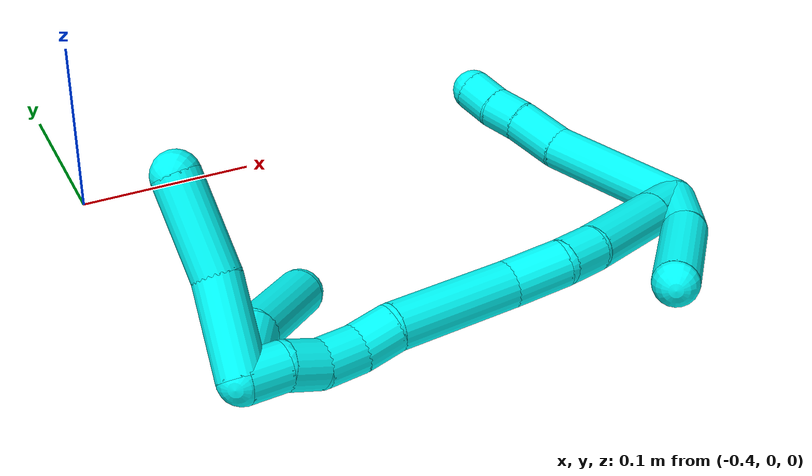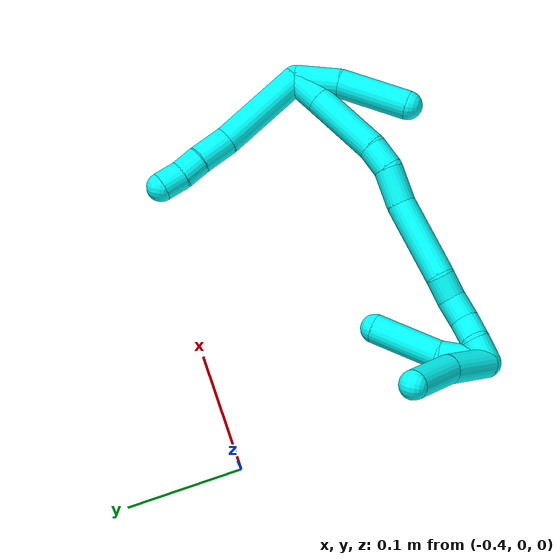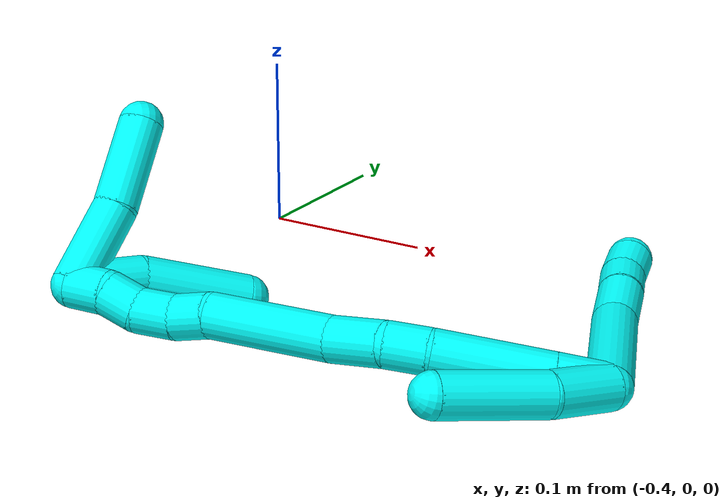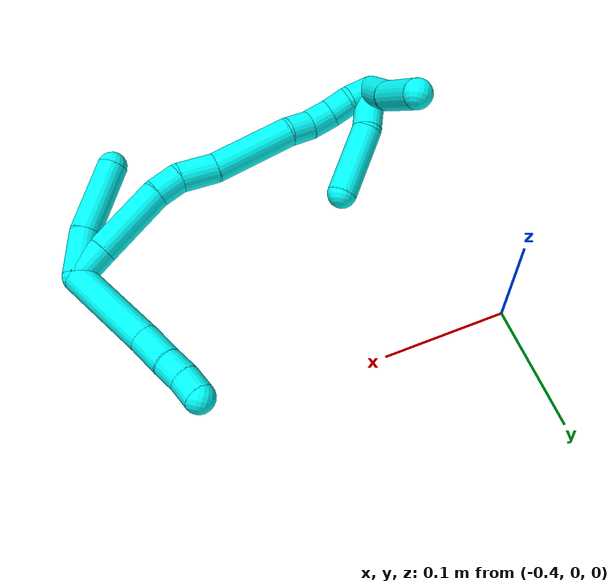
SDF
<sdf version="1.7">
 <world name="default">
  <model name="3">
   <static>0</static>
   <link name="3">
    <collision name="collision-cylinder-e_1_2_8">
     <pose>-0.032297 -0.012461 -0.019631 2.57599 -0.946817 -2.10958</pose>
     <geometry><cylinder><radius>0.0125</radius><length>0.079592</length></cylinder></geometry>
     <surface>
      <friction><ode><mu>1.16</mu><mu2>1.16</mu2><slip1>0</slip1><slip2>0</slip2></ode></friction>
      <contact><ode><kp>1e+06</kp><kd>1</kd><max_vel>0</max_vel><min_depth>0.001</min_depth></ode></contact>
     </surface>
    </collision>
    <visual name="visual-cylinder-e_1_2_8">
     <pose>-0.032297 -0.012461 -0.019631 2.57599 -0.946817 -2.10958</pose>
     <geometry><cylinder><radius>0.0125</radius><length>0.079592</length></cylinder></geometry>
     <material><ambient>0.003922 1 0.996078 1</ambient></material>
    </visual>
    <collision name="collision-cylinder-e_2_8_9">
     <pose>-0.077293 -0.02711 -0.046813 2.85963 -1.01642 -2.64263</pose>
     <geometry><cylinder><radius>0.0125</radius><length>0.029872</length></cylinder></geometry>
     <surface>
      <friction><ode><mu>1.16</mu><mu2>1.16</mu2><slip1>0</slip1><slip2>0</slip2></ode></friction>
      <contact><ode><kp>1e+06</kp><kd>1</kd><max_vel>0</max_vel><min_depth>0.001</min_depth></ode></contact>
     </surface>
    </collision>
    <visual name="visual-cylinder-e_2_8_9">
     <pose>-0.077293 -0.02711 -0.046813 2.85963 -1.01642 -2.64263</pose>
     <geometry><cylinder><radius>0.0125</radius><length>0.029872</length></cylinder></geometry>
     <material><ambient>0.003922 1 0.996078 1</ambient></material>
    </visual>
    <collision name="collision-cylinder-e_3_9_10">
     <pose>-0.098424 -0.03179 -0.059346 2.67764 -0.987012 -2.31397</pose>
     <geometry><cylinder><radius>0.0125</radius><length>0.02021</length></cylinder></geometry>
     <surface>
      <friction><ode><mu>1.16</mu><mu2>1.16</mu2><slip1>0</slip1><slip2>0</slip2></ode></friction>
      <contact><ode><kp>1e+06</kp><kd>1</kd><max_vel>0</max_vel><min_depth>0.001</min_depth></ode></contact>
     </surface>
    </collision>
    <visual name="visual-cylinder-e_3_9_10">
     <pose>-0.098424 -0.03179 -0.059346 2.67764 -0.987012 -2.31397</pose>
     <geometry><cylinder><radius>0.0125</radius><length>0.02021</length></cylinder></geometry>
     <material><ambient>0.003922 1 0.996078 1</ambient></material>
    </visual>
    <collision name="collision-cylinder-e_4_10_6">
     <pose>-0.115072 -0.03548 -0.070186 2.93993 -0.941725 -2.74921</pose>
     <geometry><cylinder><radius>0.0125</radius><length>0.020325</length></cylinder></geometry>
     <surface>
      <friction><ode><mu>1.16</mu><mu2>1.16</mu2><slip1>0</slip1><slip2>0</slip2></ode></friction>
      <contact><ode><kp>1e+06</kp><kd>1</kd><max_vel>0</max_vel><min_depth>0.001</min_depth></ode></contact>
     </surface>
    </collision>
    <visual name="visual-cylinder-e_4_10_6">
     <pose>-0.115072 -0.03548 -0.070186 2.93993 -0.941725 -2.74921</pose>
     <geometry><cylinder><radius>0.0125</radius><length>0.020325</length></cylinder></geometry>
     <material><ambient>0.003922 1 0.996078 1</ambient></material>
    </visual>
    <collision name="collision-cylinder-e_1_2_11">
     <pose>0.003868 -0.000447 0.01876 0.023841 0.203255 0.002431</pose>
     <geometry><cylinder><radius>0.0125</radius><length>0.03832</length></cylinder></geometry>
     <surface>
      <friction><ode><mu>1.16</mu><mu2>1.16</mu2><slip1>0</slip1><slip2>0</slip2></ode></friction>
      <contact><ode><kp>1e+06</kp><kd>1</kd><max_vel>0</max_vel><min_depth>0.001</min_depth></ode></contact>
     </surface>
    </collision>
    <visual name="visual-cylinder-e_1_2_11">
     <pose>0.003868 -0.000447 0.01876 0.023841 0.203255 0.002431</pose>
     <geometry><cylinder><radius>0.0125</radius><length>0.03832</length></cylinder></geometry>
     <material><ambient>0.003922 1 0.996078 1</ambient></material>
    </visual>
    <collision name="collision-cylinder-e_2_11_5">
     <pose>0.007778 -0.005135 0.068068 0.137926 0.001372 9.5e-05</pose>
     <geometry><cylinder><radius>0.0125</radius><length>0.06168</length></cylinder></geometry>
     <surface>
      <friction><ode><mu>1.16</mu><mu2>1.16</mu2><slip1>0</slip1><slip2>0</slip2></ode></friction>
      <contact><ode><kp>1e+06</kp><kd>1</kd><max_vel>0</max_vel><min_depth>0.001</min_depth></ode></contact>
     </surface>
    </collision>
    <visual name="visual-cylinder-e_2_11_5">
     <pose>0.007778 -0.005135 0.068068 0.137926 0.001372 9.5e-05</pose>
     <geometry><cylinder><radius>0.0125</radius><length>0.06168</length></cylinder></geometry>
     <material><ambient>0.003922 1 0.996078 1</ambient></material>
    </visual>
    <collision name="collision-cylinder-e_1_2_12">
     <pose>-0.005149 -0.004053 0.012666 0.309701 -0.369424 -0.058316</pose>
     <geometry><cylinder><radius>0.0125</radius><length>0.028522</length></cylinder></geometry>
     <surface>
      <friction><ode><mu>1.16</mu><mu2>1.16</mu2><slip1>0</slip1><slip2>0</slip2></ode></friction>
      <contact><ode><kp>1e+06</kp><kd>1</kd><max_vel>0</max_vel><min_depth>0.001</min_depth></ode></contact>
     </surface>
    </collision>
    <visual name="visual-cylinder-e_1_2_12">
     <pose>-0.005149 -0.004053 0.012666 0.309701 -0.369424 -0.058316</pose>
     <geometry><cylinder><radius>0.0125</radius><length>0.028522</length></cylinder></geometry>
     <material><ambient>0.003922 1 0.996078 1</ambient></material>
    </visual>
    <collision name="collision-cylinder-e_2_12_13">
     <pose>-0.021747 -0.017306 0.053083 0.320101 -0.373237 -0.060943</pose>
     <geometry><cylinder><radius>0.0125</radius><length>0.062793</length></cylinder></geometry>
     <surface>
      <friction><ode><mu>1.16</mu><mu2>1.16</mu2><slip1>0</slip1><slip2>0</slip2></ode></friction>
      <contact><ode><kp>1e+06</kp><kd>1</kd><max_vel>0</max_vel><min_depth>0.001</min_depth></ode></contact>
     </surface>
    </collision>
    <visual name="visual-cylinder-e_2_12_13">
     <pose>-0.021747 -0.017306 0.053083 0.320101 -0.373237 -0.060943</pose>
     <geometry><cylinder><radius>0.0125</radius><length>0.062793</length></cylinder></geometry>
     <material><ambient>0.003922 1 0.996078 1</ambient></material>
    </visual>
    <collision name="collision-cylinder-e_3_13_14">
     <pose>-0.038397 -0.031535 0.089744 0.513861 -0.470271 -0.125721</pose>
     <geometry><cylinder><radius>0.0125</radius><length>0.022959</length></cylinder></geometry>
     <surface>
      <friction><ode><mu>1.16</mu><mu2>1.16</mu2><slip1>0</slip1><slip2>0</slip2></ode></friction>
      <contact><ode><kp>1e+06</kp><kd>1</kd><max_vel>0</max_vel><min_depth>0.001</min_depth></ode></contact>
     </surface>
    </collision>
    <visual name="visual-cylinder-e_3_13_14">
     <pose>-0.038397 -0.031535 0.089744 0.513861 -0.470271 -0.125721</pose>
     <geometry><cylinder><radius>0.0125</radius><length>0.022959</length></cylinder></geometry>
     <material><ambient>0.003922 1 0.996078 1</ambient></material>
    </visual>
    <collision name="collision-cylinder-e_4_14_15">
     <pose>-0.052198 -0.046888 0.107199 0.879476 -0.570597 -0.27424</pose>
     <geometry><cylinder><radius>0.0125</radius><length>0.031843</length></cylinder></geometry>
     <surface>
      <friction><ode><mu>1.16</mu><mu2>1.16</mu2><slip1>0</slip1><slip2>0</slip2></ode></friction>
      <contact><ode><kp>1e+06</kp><kd>1</kd><max_vel>0</max_vel><min_depth>0.001</min_depth></ode></contact>
     </surface>
    </collision>
    <visual name="visual-cylinder-e_4_14_15">
     <pose>-0.052198 -0.046888 0.107199 0.879476 -0.570597 -0.27424</pose>
     <geometry><cylinder><radius>0.0125</radius><length>0.031843</length></cylinder></geometry>
     <material><ambient>0.003922 1 0.996078 1</ambient></material>
    </visual>
    <collision name="collision-cylinder-e_5_15_16">
     <pose>-0.079479 -0.074834 0.139154 0.645272 -0.567522 -0.19438</pose>
     <geometry><cylinder><radius>0.0125</radius><length>0.069504</length></cylinder></geometry>
     <surface>
      <friction><ode><mu>1.16</mu><mu2>1.16</mu2><slip1>0</slip1><slip2>0</slip2></ode></friction>
      <contact><ode><kp>1e+06</kp><kd>1</kd><max_vel>0</max_vel><min_depth>0.001</min_depth></ode></contact>
     </surface>
    </collision>
    <visual name="visual-cylinder-e_5_15_16">
     <pose>-0.079479 -0.074834 0.139154 0.645272 -0.567522 -0.19438</pose>
     <geometry><cylinder><radius>0.0125</radius><length>0.069504</length></cylinder></geometry>
     <material><ambient>0.003922 1 0.996078 1</ambient></material>
    </visual>
    <collision name="collision-cylinder-e_6_16_17">
     <pose>-0.102413 -0.099739 0.168778 0.864371 -0.418214 -0.195149</pose>
     <geometry><cylinder><radius>0.0125</radius><length>0.020948</length></cylinder></geometry>
     <surface>
      <friction><ode><mu>1.16</mu><mu2>1.16</mu2><slip1>0</slip1><slip2>0</slip2></ode></friction>
      <contact><ode><kp>1e+06</kp><kd>1</kd><max_vel>0</max_vel><min_depth>0.001</min_depth></ode></contact>
     </surface>
    </collision>
    <visual name="visual-cylinder-e_6_16_17">
     <pose>-0.102413 -0.099739 0.168778 0.864371 -0.418214 -0.195149</pose>
     <geometry><cylinder><radius>0.0125</radius><length>0.020948</length></cylinder></geometry>
     <material><ambient>0.003922 1 0.996078 1</ambient></material>
    </visual>
    <collision name="collision-cylinder-e_7_17_18">
     <pose>-0.112269 -0.112412 0.182784 0.605295 -0.533917 -0.170373</pose>
     <geometry><cylinder><radius>0.0125</radius><length>0.022017</length></cylinder></geometry>
     <surface>
      <friction><ode><mu>1.16</mu><mu2>1.16</mu2><slip1>0</slip1><slip2>0</slip2></ode></friction>
      <contact><ode><kp>1e+06</kp><kd>1</kd><max_vel>0</max_vel><min_depth>0.001</min_depth></ode></contact>
     </surface>
    </collision>
    <visual name="visual-cylinder-e_7_17_18">
     <pose>-0.112269 -0.112412 0.182784 0.605295 -0.533917 -0.170373</pose>
     <geometry><cylinder><radius>0.0125</radius><length>0.022017</length></cylinder></geometry>
     <material><ambient>0.003922 1 0.996078 1</ambient></material>
    </visual>
    <collision name="collision-cylinder-e_8_18_19">
     <pose>-0.124815 -0.120089 0.197453 0.32081 -0.764048 -0.129823</pose>
     <geometry><cylinder><radius>0.0125</radius><length>0.020072</length></cylinder></geometry>
     <surface>
      <friction><ode><mu>1.16</mu><mu2>1.16</mu2><slip1>0</slip1><slip2>0</slip2></ode></friction>
      <contact><ode><kp>1e+06</kp><kd>1</kd><max_vel>0</max_vel><min_depth>0.001</min_depth></ode></contact>
     </surface>
    </collision>
    <visual name="visual-cylinder-e_8_18_19">
     <pose>-0.124815 -0.120089 0.197453 0.32081 -0.764048 -0.129823</pose>
     <geometry><cylinder><radius>0.0125</radius><length>0.020072</length></cylinder></geometry>
     <material><ambient>0.003922 1 0.996078 1</ambient></material>
    </visual>
    <collision name="collision-cylinder-e_9_19_1">
     <pose>-0.137777 -0.127808 0.211267 0.664533 -0.599249 -0.212393</pose>
     <geometry><cylinder><radius>0.0125</radius><length>0.021342</length></cylinder></geometry>
     <surface>
      <friction><ode><mu>1.16</mu><mu2>1.16</mu2><slip1>0</slip1><slip2>0</slip2></ode></friction>
      <contact><ode><kp>1e+06</kp><kd>1</kd><max_vel>0</max_vel><min_depth>0.001</min_depth></ode></contact>
     </surface>
    </collision>
    <visual name="visual-cylinder-e_9_19_1">
     <pose>-0.137777 -0.127808 0.211267 0.664533 -0.599249 -0.212393</pose>
     <geometry><cylinder><radius>0.0125</radius><length>0.021342</length></cylinder></geometry>
     <material><ambient>0.003922 1 0.996078 1</ambient></material>
    </visual>
    <collision name="collision-cylinder-e_1_1_20">
     <pose>-0.147431 -0.131489 0.198741 -3.05178 -0.183923 2.23479</pose>
     <geometry><cylinder><radius>0.0125</radius><length>0.039752</length></cylinder></geometry>
     <surface>
      <friction><ode><mu>1.16</mu><mu2>1.16</mu2><slip1>0</slip1><slip2>0</slip2></ode></friction>
      <contact><ode><kp>1e+06</kp><kd>1</kd><max_vel>0</max_vel><min_depth>0.001</min_depth></ode></contact>
     </surface>
    </collision>
    <visual name="visual-cylinder-e_1_1_20">
     <pose>-0.147431 -0.131489 0.198741 -3.05178 -0.183923 2.23479</pose>
     <geometry><cylinder><radius>0.0125</radius><length>0.039752</length></cylinder></geometry>
     <material><ambient>0.003922 1 0.996078 1</ambient></material>
    </visual>
    <collision name="collision-cylinder-e_2_20_4">
     <pose>-0.146847 -0.128026 0.149501 -3.08419 0.140505 -2.36681</pose>
     <geometry><cylinder><radius>0.0125</radius><length>0.060248</length></cylinder></geometry>
     <surface>
      <friction><ode><mu>1.16</mu><mu2>1.16</mu2><slip1>0</slip1><slip2>0</slip2></ode></friction>
      <contact><ode><kp>1e+06</kp><kd>1</kd><max_vel>0</max_vel><min_depth>0.001</min_depth></ode></contact>
     </surface>
    </collision>
    <visual name="visual-cylinder-e_2_20_4">
     <pose>-0.146847 -0.128026 0.149501 -3.08419 0.140505 -2.36681</pose>
     <geometry><cylinder><radius>0.0125</radius><length>0.060248</length></cylinder></geometry>
     <material><ambient>0.003922 1 0.996078 1</ambient></material>
    </visual>
    <collision name="collision-cylinder-e_1_1_21">
     <pose>-0.162201 -0.120869 0.208029 -2.25896 -0.854605 1.53409</pose>
     <geometry><cylinder><radius>0.0125</radius><length>0.0488</length></cylinder></geometry>
     <surface>
      <friction><ode><mu>1.16</mu><mu2>1.16</mu2><slip1>0</slip1><slip2>0</slip2></ode></friction>
      <contact><ode><kp>1e+06</kp><kd>1</kd><max_vel>0</max_vel><min_depth>0.001</min_depth></ode></contact>
     </surface>
    </collision>
    <visual name="visual-cylinder-e_1_1_21">
     <pose>-0.162201 -0.120869 0.208029 -2.25896 -0.854605 1.53409</pose>
     <geometry><cylinder><radius>0.0125</radius><length>0.0488</length></cylinder></geometry>
     <material><ambient>0.003922 1 0.996078 1</ambient></material>
    </visual>
    <collision name="collision-cylinder-e_2_21_3">
     <pose>-0.20229 -0.096636 0.191181 -2.08337 -1.01035 1.51512</pose>
     <geometry><cylinder><radius>0.0125</radius><length>0.0512</length></cylinder></geometry>
     <surface>
      <friction><ode><mu>1.16</mu><mu2>1.16</mu2><slip1>0</slip1><slip2>0</slip2></ode></friction>
      <contact><ode><kp>1e+06</kp><kd>1</kd><max_vel>0</max_vel><min_depth>0.001</min_depth></ode></contact>
     </surface>
    </collision>
    <visual name="visual-cylinder-e_2_21_3">
     <pose>-0.20229 -0.096636 0.191181 -2.08337 -1.01035 1.51512</pose>
     <geometry><cylinder><radius>0.0125</radius><length>0.0512</length></cylinder></geometry>
     <material><ambient>0.003922 1 0.996078 1</ambient></material>
    </visual>
    <collision name="collision-sphere-3">
     <pose>-0.223973 -0.084777 0.184508 0 -0 0</pose>
     <geometry><sphere><radius>0.0125</radius></sphere></geometry>
     <surface>
      <friction><ode><mu>1.16</mu><mu2>1.16</mu2><slip1>0</slip1><slip2>0</slip2></ode></friction>
      <contact><ode><kp>1e+06</kp><kd>1</kd><max_vel>0</max_vel><min_depth>0.001</min_depth></ode></contact>
     </surface>
    </collision>
    <visual name="visual-sphere-3">
     <pose>-0.223973 -0.084777 0.184508 0 -0 0</pose>
     <geometry><sphere><radius>0.0125</radius></sphere></geometry>
     <material><ambient>0.003922 1 0.996078 1</ambient></material>
    </visual>
    <collision name="collision-sphere-21">
     <pose>-0.180606 -0.108495 0.197855 0 -0 0</pose>
     <geometry><sphere><radius>0.0125</radius></sphere></geometry>
     <surface>
      <friction><ode><mu>1.16</mu><mu2>1.16</mu2><slip1>0</slip1><slip2>0</slip2></ode></friction>
      <contact><ode><kp>1e+06</kp><kd>1</kd><max_vel>0</max_vel><min_depth>0.001</min_depth></ode></contact>
     </surface>
    </collision>
    <visual name="visual-sphere-21">
     <pose>-0.180606 -0.108495 0.197855 0 -0 0</pose>
     <geometry><sphere><radius>0.0125</radius></sphere></geometry>
     <material><ambient>0.003922 1 0.996078 1</ambient></material>
    </visual>
    <collision name="collision-sphere-4">
     <pose>-0.142629 -0.126314 0.119723 0 -0 0</pose>
     <geometry><sphere><radius>0.0125</radius></sphere></geometry>
     <surface>
      <friction><ode><mu>1.16</mu><mu2>1.16</mu2><slip1>0</slip1><slip2>0</slip2></ode></friction>
      <contact><ode><kp>1e+06</kp><kd>1</kd><max_vel>0</max_vel><min_depth>0.001</min_depth></ode></contact>
     </surface>
    </collision>
    <visual name="visual-sphere-4">
     <pose>-0.142629 -0.126314 0.119723 0 -0 0</pose>
     <geometry><sphere><radius>0.0125</radius></sphere></geometry>
     <material><ambient>0.003922 1 0.996078 1</ambient></material>
    </visual>
    <collision name="collision-sphere-20">
     <pose>-0.151066 -0.129737 0.179279 0 -0 0</pose>
     <geometry><sphere><radius>0.0125</radius></sphere></geometry>
     <surface>
      <friction><ode><mu>1.16</mu><mu2>1.16</mu2><slip1>0</slip1><slip2>0</slip2></ode></friction>
      <contact><ode><kp>1e+06</kp><kd>1</kd><max_vel>0</max_vel><min_depth>0.001</min_depth></ode></contact>
     </surface>
    </collision>
    <visual name="visual-sphere-20">
     <pose>-0.151066 -0.129737 0.179279 0 -0 0</pose>
     <geometry><sphere><radius>0.0125</radius></sphere></geometry>
     <material><ambient>0.003922 1 0.996078 1</ambient></material>
    </visual>
    <collision name="collision-sphere-11">
     <pose>0.007735 -0.000895 0.037521 0 -0 0</pose>
     <geometry><sphere><radius>0.0125</radius></sphere></geometry>
     <surface>
      <friction><ode><mu>1.16</mu><mu2>1.16</mu2><slip1>0</slip1><slip2>0</slip2></ode></friction>
      <contact><ode><kp>1e+06</kp><kd>1</kd><max_vel>0</max_vel><min_depth>0.001</min_depth></ode></contact>
     </surface>
    </collision>
    <visual name="visual-sphere-11">
     <pose>0.007735 -0.000895 0.037521 0 -0 0</pose>
     <geometry><sphere><radius>0.0125</radius></sphere></geometry>
     <material><ambient>0.003922 1 0.996078 1</ambient></material>
    </visual>
    <collision name="collision-sphere-6">
     <pose>-0.12329 -0.036678 -0.076044 0 -0 0</pose>
     <geometry><sphere><radius>0.0125</radius></sphere></geometry>
     <surface>
      <friction><ode><mu>1.16</mu><mu2>1.16</mu2><slip1>0</slip1><slip2>0</slip2></ode></friction>
      <contact><ode><kp>1e+06</kp><kd>1</kd><max_vel>0</max_vel><min_depth>0.001</min_depth></ode></contact>
     </surface>
    </collision>
    <visual name="visual-sphere-6">
     <pose>-0.12329 -0.036678 -0.076044 0 -0 0</pose>
     <geometry><sphere><radius>0.0125</radius></sphere></geometry>
     <material><ambient>0.003922 1 0.996078 1</ambient></material>
    </visual>
    <collision name="collision-sphere-10">
     <pose>-0.106855 -0.034283 -0.064327 0 -0 0</pose>
     <geometry><sphere><radius>0.0125</radius></sphere></geometry>
     <surface>
      <friction><ode><mu>1.16</mu><mu2>1.16</mu2><slip1>0</slip1><slip2>0</slip2></ode></friction>
      <contact><ode><kp>1e+06</kp><kd>1</kd><max_vel>0</max_vel><min_depth>0.001</min_depth></ode></contact>
     </surface>
    </collision>
    <visual name="visual-sphere-10">
     <pose>-0.106855 -0.034283 -0.064327 0 -0 0</pose>
     <geometry><sphere><radius>0.0125</radius></sphere></geometry>
     <material><ambient>0.003922 1 0.996078 1</ambient></material>
    </visual>
    <collision name="collision-sphere-9">
     <pose>-0.089992 -0.029298 -0.054365 0 -0 0</pose>
     <geometry><sphere><radius>0.0125</radius></sphere></geometry>
     <surface>
      <friction><ode><mu>1.16</mu><mu2>1.16</mu2><slip1>0</slip1><slip2>0</slip2></ode></friction>
      <contact><ode><kp>1e+06</kp><kd>1</kd><max_vel>0</max_vel><min_depth>0.001</min_depth></ode></contact>
     </surface>
    </collision>
    <visual name="visual-sphere-9">
     <pose>-0.089992 -0.029298 -0.054365 0 -0 0</pose>
     <geometry><sphere><radius>0.0125</radius></sphere></geometry>
     <material><ambient>0.003922 1 0.996078 1</ambient></material>
    </visual>
    <collision name="collision-sphere-2">
     <geometry><sphere><radius>0.0125</radius></sphere></geometry>
     <surface>
      <friction><ode><mu>1.16</mu><mu2>1.16</mu2><slip1>0</slip1><slip2>0</slip2></ode></friction>
      <contact><ode><kp>1e+06</kp><kd>1</kd><max_vel>0</max_vel><min_depth>0.001</min_depth></ode></contact>
     </surface>
    </collision>
    <visual name="visual-sphere-2">
     <geometry><sphere><radius>0.0125</radius></sphere></geometry>
     <material><ambient>0.003922 1 0.996078 1</ambient></material>
    </visual>
    <collision name="collision-sphere-19">
     <pose>-0.131758 -0.122374 0.20433 0 -0 0</pose>
     <geometry><sphere><radius>0.0125</radius></sphere></geometry>
     <surface>
      <friction><ode><mu>1.16</mu><mu2>1.16</mu2><slip1>0</slip1><slip2>0</slip2></ode></friction>
      <contact><ode><kp>1e+06</kp><kd>1</kd><max_vel>0</max_vel><min_depth>0.001</min_depth></ode></contact>
     </surface>
    </collision>
    <visual name="visual-sphere-19">
     <pose>-0.131758 -0.122374 0.20433 0 -0 0</pose>
     <geometry><sphere><radius>0.0125</radius></sphere></geometry>
     <material><ambient>0.003922 1 0.996078 1</ambient></material>
    </visual>
    <collision name="collision-sphere-8">
     <pose>-0.064594 -0.024922 -0.039261 0 -0 0</pose>
     <geometry><sphere><radius>0.0125</radius></sphere></geometry>
     <surface>
      <friction><ode><mu>1.16</mu><mu2>1.16</mu2><slip1>0</slip1><slip2>0</slip2></ode></friction>
      <contact><ode><kp>1e+06</kp><kd>1</kd><max_vel>0</max_vel><min_depth>0.001</min_depth></ode></contact>
     </surface>
    </collision>
    <visual name="visual-sphere-8">
     <pose>-0.064594 -0.024922 -0.039261 0 -0 0</pose>
     <geometry><sphere><radius>0.0125</radius></sphere></geometry>
     <material><ambient>0.003922 1 0.996078 1</ambient></material>
    </visual>
    <collision name="collision-sphere-5">
     <pose>0.00782 -0.009375 0.098615 0 -0 0</pose>
     <geometry><sphere><radius>0.0125</radius></sphere></geometry>
     <surface>
      <friction><ode><mu>1.16</mu><mu2>1.16</mu2><slip1>0</slip1><slip2>0</slip2></ode></friction>
      <contact><ode><kp>1e+06</kp><kd>1</kd><max_vel>0</max_vel><min_depth>0.001</min_depth></ode></contact>
     </surface>
    </collision>
    <visual name="visual-sphere-5">
     <pose>0.00782 -0.009375 0.098615 0 -0 0</pose>
     <geometry><sphere><radius>0.0125</radius></sphere></geometry>
     <material><ambient>0.003922 1 0.996078 1</ambient></material>
    </visual>
    <collision name="collision-sphere-12">
     <pose>-0.010299 -0.008106 0.025333 0 -0 0</pose>
     <geometry><sphere><radius>0.0125</radius></sphere></geometry>
     <surface>
      <friction><ode><mu>1.16</mu><mu2>1.16</mu2><slip1>0</slip1><slip2>0</slip2></ode></friction>
      <contact><ode><kp>1e+06</kp><kd>1</kd><max_vel>0</max_vel><min_depth>0.001</min_depth></ode></contact>
     </surface>
    </collision>
    <visual name="visual-sphere-12">
     <pose>-0.010299 -0.008106 0.025333 0 -0 0</pose>
     <geometry><sphere><radius>0.0125</radius></sphere></geometry>
     <material><ambient>0.003922 1 0.996078 1</ambient></material>
    </visual>
    <collision name="collision-sphere-13">
     <pose>-0.033195 -0.026505 0.080833 0 -0 0</pose>
     <geometry><sphere><radius>0.0125</radius></sphere></geometry>
     <surface>
      <friction><ode><mu>1.16</mu><mu2>1.16</mu2><slip1>0</slip1><slip2>0</slip2></ode></friction>
      <contact><ode><kp>1e+06</kp><kd>1</kd><max_vel>0</max_vel><min_depth>0.001</min_depth></ode></contact>
     </surface>
    </collision>
    <visual name="visual-sphere-13">
     <pose>-0.033195 -0.026505 0.080833 0 -0 0</pose>
     <geometry><sphere><radius>0.0125</radius></sphere></geometry>
     <material><ambient>0.003922 1 0.996078 1</ambient></material>
    </visual>
    <collision name="collision-sphere-14">
     <pose>-0.043599 -0.036565 0.098656 0 -0 0</pose>
     <geometry><sphere><radius>0.0125</radius></sphere></geometry>
     <surface>
      <friction><ode><mu>1.16</mu><mu2>1.16</mu2><slip1>0</slip1><slip2>0</slip2></ode></friction>
      <contact><ode><kp>1e+06</kp><kd>1</kd><max_vel>0</max_vel><min_depth>0.001</min_depth></ode></contact>
     </surface>
    </collision>
    <visual name="visual-sphere-14">
     <pose>-0.043599 -0.036565 0.098656 0 -0 0</pose>
     <geometry><sphere><radius>0.0125</radius></sphere></geometry>
     <material><ambient>0.003922 1 0.996078 1</ambient></material>
    </visual>
    <collision name="collision-sphere-15">
     <pose>-0.060798 -0.05721 0.115742 0 -0 0</pose>
     <geometry><sphere><radius>0.0125</radius></sphere></geometry>
     <surface>
      <friction><ode><mu>1.16</mu><mu2>1.16</mu2><slip1>0</slip1><slip2>0</slip2></ode></friction>
      <contact><ode><kp>1e+06</kp><kd>1</kd><max_vel>0</max_vel><min_depth>0.001</min_depth></ode></contact>
     </surface>
    </collision>
    <visual name="visual-sphere-15">
     <pose>-0.060798 -0.05721 0.115742 0 -0 0</pose>
     <geometry><sphere><radius>0.0125</radius></sphere></geometry>
     <material><ambient>0.003922 1 0.996078 1</ambient></material>
    </visual>
    <collision name="collision-sphere-16">
     <pose>-0.098159 -0.092458 0.162565 0 -0 0</pose>
     <geometry><sphere><radius>0.0125</radius></sphere></geometry>
     <surface>
      <friction><ode><mu>1.16</mu><mu2>1.16</mu2><slip1>0</slip1><slip2>0</slip2></ode></friction>
      <contact><ode><kp>1e+06</kp><kd>1</kd><max_vel>0</max_vel><min_depth>0.001</min_depth></ode></contact>
     </surface>
    </collision>
    <visual name="visual-sphere-16">
     <pose>-0.098159 -0.092458 0.162565 0 -0 0</pose>
     <geometry><sphere><radius>0.0125</radius></sphere></geometry>
     <material><ambient>0.003922 1 0.996078 1</ambient></material>
    </visual>
    <collision name="collision-sphere-17">
     <pose>-0.106667 -0.10702 0.174991 0 -0 0</pose>
     <geometry><sphere><radius>0.0125</radius></sphere></geometry>
     <surface>
      <friction><ode><mu>1.16</mu><mu2>1.16</mu2><slip1>0</slip1><slip2>0</slip2></ode></friction>
      <contact><ode><kp>1e+06</kp><kd>1</kd><max_vel>0</max_vel><min_depth>0.001</min_depth></ode></contact>
     </surface>
    </collision>
    <visual name="visual-sphere-17">
     <pose>-0.106667 -0.10702 0.174991 0 -0 0</pose>
     <geometry><sphere><radius>0.0125</radius></sphere></geometry>
     <material><ambient>0.003922 1 0.996078 1</ambient></material>
    </visual>
    <collision name="collision-sphere-18">
     <pose>-0.117871 -0.117804 0.190577 0 -0 0</pose>
     <geometry><sphere><radius>0.0125</radius></sphere></geometry>
     <surface>
      <friction><ode><mu>1.16</mu><mu2>1.16</mu2><slip1>0</slip1><slip2>0</slip2></ode></friction>
      <contact><ode><kp>1e+06</kp><kd>1</kd><max_vel>0</max_vel><min_depth>0.001</min_depth></ode></contact>
     </surface>
    </collision>
    <visual name="visual-sphere-18">
     <pose>-0.117871 -0.117804 0.190577 0 -0 0</pose>
     <geometry><sphere><radius>0.0125</radius></sphere></geometry>
     <material><ambient>0.003922 1 0.996078 1</ambient></material>
    </visual>
    <collision name="collision-sphere-1">
     <pose>-0.143796 -0.133242 0.218203 0 -0 0</pose>
     <geometry><sphere><radius>0.0125</radius></sphere></geometry>
     <surface>
      <friction><ode><mu>1.16</mu><mu2>1.16</mu2><slip1>0</slip1><slip2>0</slip2></ode></friction>
      <contact><ode><kp>1e+06</kp><kd>1</kd><max_vel>0</max_vel><min_depth>0.001</min_depth></ode></contact>
     </surface>
    </collision>
    <visual name="visual-sphere-1">
     <pose>-0.143796 -0.133242 0.218203 0 -0 0</pose>
     <geometry><sphere><radius>0.0125</radius></sphere></geometry>
     <material><ambient>0.003922 1 0.996078 1</ambient></material>
    </visual>
    <inertial>
     <pose>-0.081604 -0.060811 0.094734 0 -0 0</pose>
     <mass>0.75</mass>
     <inertia><ixx>-0</ixx><ixy>0</ixy><ixz>0</ixz><iyy>0.000129</iyy><iyz>0</iyz><izz>0.000134</izz></inertia>
    </inertial>
   </link>
   <pose>-0.100279 -0.150368 0.011848 1.268 0.534624 -0.76881</pose>
  </model>
 </world>
</sdf>
